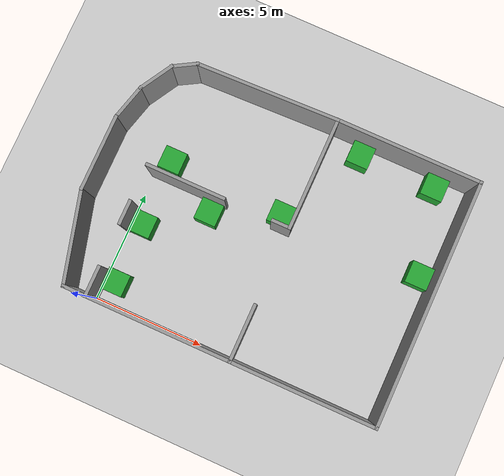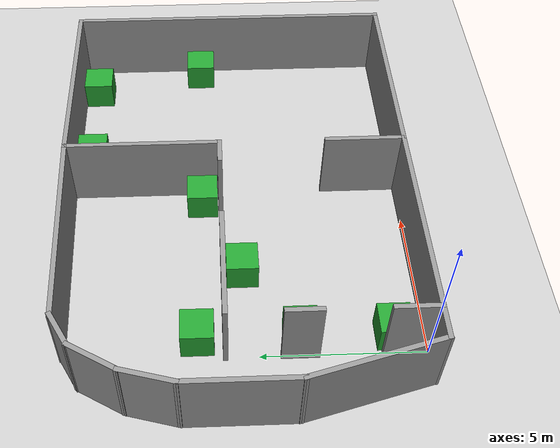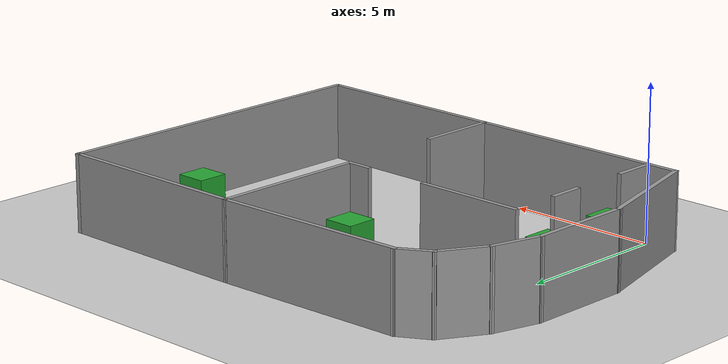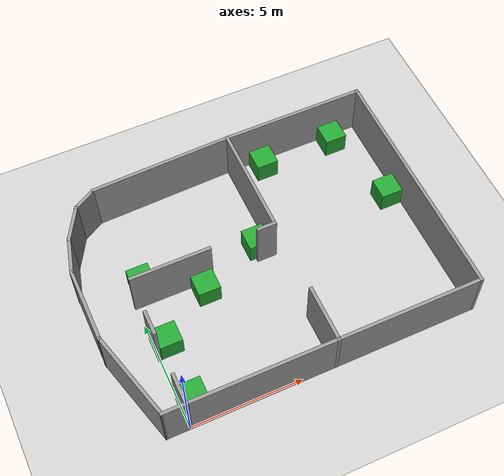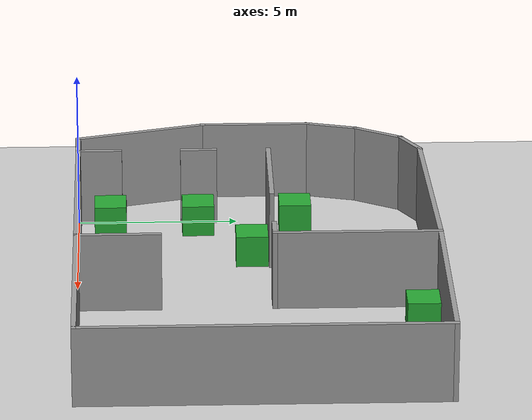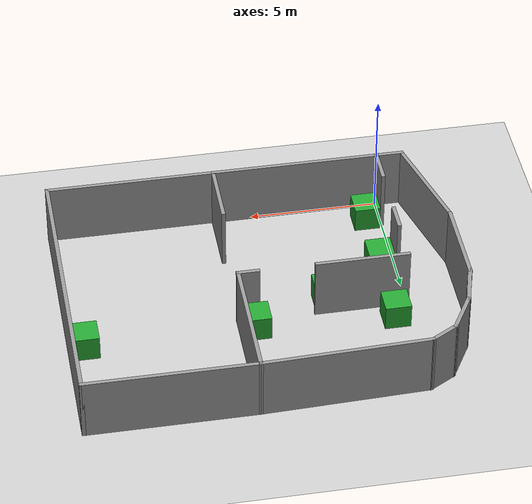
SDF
<sdf version="1.6">
 <world name="default">
  <light name="sun" type="directional">
   <pose>0 0 10 0 -0 0</pose>
   <diffuse>0.8 0.8 0.8 1</diffuse>
   <specular>0.2 0.2 0.2 1</specular>
   <attenuation>
    <range>1000</range>
    <constant>0.9</constant>
    <linear>0.01</linear>
    <quadratic>0.001</quadratic>
   </attenuation>
   <direction>-0.5 0.1 -0.9</direction>
  </light>
  <model name="ground_plane">
   <static>1</static>
   <link name="link">
    <collision name="collision">
     <geometry><plane><normal>0 0 1</normal><size>100 100</size></plane></geometry>
     <surface>
      <contact><collide_bitmask>65535</collide_bitmask></contact>
      <friction><ode><mu>100</mu><mu2>50</mu2></ode></friction>
     </surface>
    </collision>
    <visual name="visual">
     <cast_shadows>0</cast_shadows>
     <geometry><plane><normal>0 0 1</normal><size>100 100</size></plane></geometry>
     <material>
      <script><uri>file://media/materials/scripts/gazebo.material</uri><name>Gazebo/Grey</name></script>
     </material>
    </visual>
   </link>
  </model>
  <gravity>0 0 -9.8</gravity>
  <magnetic_field>6e-06 2.3e-05 -4.2e-05</magnetic_field>
  <atmosphere type="adiabatic"/>
  <physics name="default_physics" default="0" type="ode">
   <max_step_size>0.001</max_step_size>
   <real_time_factor>1</real_time_factor>
   <real_time_update_rate>1000</real_time_update_rate>
  </physics>
  <scene><ambient>0.4 0.4 0.4 1</ambient><background>0.7 0.7 0.7 1</background><shadows>1</shadows></scene>
  <audio><device>default</device></audio>
  <spherical_coordinates>
   <surface_model>EARTH_WGS84</surface_model>
   <latitude_deg>0</latitude_deg>
   <longitude_deg>0</longitude_deg>
   <elevation>0</elevation>
   <heading_deg>0</heading_deg>
  </spherical_coordinates>
  <model name="digitaleFabrik">
   <pose>5.46099 5.49277 0 0 -0 0</pose>
   <link name="Wall_0">
    <collision name="Wall_0_Collision">
     <geometry><box><size>6.65 0.15 2.5</size></box></geometry>
     <pose>0 0 1.25 0 -0 0</pose>
    </collision>
    <visual name="Wall_0_Visual">
     <pose>0 0 1.25 0 -0 0</pose>
     <geometry><box><size>6.65 0.15 2.5</size></box></geometry>
     <material>
      <script><uri>file://media/materials/scripts/gazebo.material</uri><name>Gazebo/Grey</name></script>
      <ambient>1 1 1 1</ambient>
     </material>
     <meta><layer>0</layer></meta>
    </visual>
    <pose>-2.21099 -5.49277 0 0 -0 0</pose>
   </link>
   <link name="Wall_1">
    <collision name="Wall_1_Collision">
     <geometry><box><size>6.65 0.15 2.5</size></box></geometry>
     <pose>0 0 1.25 0 -0 0</pose>
    </collision>
    <visual name="Wall_1_Visual">
     <pose>0 0 1.25 0 -0 0</pose>
     <geometry><box><size>6.65 0.15 2.5</size></box></geometry>
     <material>
      <script><uri>file://media/materials/scripts/gazebo.material</uri><name>Gazebo/Grey</name></script>
      <ambient>1 1 1 1</ambient>
     </material>
     <meta><layer>0</layer></meta>
    </visual>
    <pose>4.28901 -5.49277 0 0 -0 0</pose>
   </link>
   <link name="Wall_12">
    <collision name="Wall_12_Collision">
     <geometry><box><size>1.45 0.15 2.5</size></box></geometry>
     <pose>0 0 1.25 0 -0 0</pose>
    </collision>
    <visual name="Wall_12_Visual">
     <pose>0 0 1.25 0 -0 0</pose>
     <geometry><box><size>1.45 0.15 2.5</size></box></geometry>
     <material>
      <script><uri>file://media/materials/scripts/gazebo.material</uri><name>Gazebo/Grey</name></script>
      <ambient>1 1 1 1</ambient>
     </material>
     <meta><layer>0</layer></meta>
    </visual>
    <pose>-5.46099 -4.84277 0 0 -0 1.5708</pose>
   </link>
   <link name="Wall_14">
    <collision name="Wall_14_Collision">
     <geometry><box><size>0.9 0.15 2.5</size></box></geometry>
     <pose>0 0 1.25 0 -0 0</pose>
    </collision>
    <visual name="Wall_14_Visual">
     <pose>0 0 1.25 0 -0 0</pose>
     <geometry><box><size>0.9 0.15 2.5</size></box></geometry>
     <material>
      <script><uri>file://media/materials/scripts/gazebo.material</uri><name>Gazebo/Grey</name></script>
      <ambient>1 1 1 1</ambient>
     </material>
     <meta><layer>0</layer></meta>
    </visual>
    <pose>0.664007 0.507225 0 0 -0 3.14159</pose>
   </link>
   <link name="Wall_16">
    <collision name="Wall_16_Collision">
     <geometry><box><size>1.15 0.15 2.5</size></box></geometry>
     <pose>0 0 1.25 0 -0 0</pose>
    </collision>
    <visual name="Wall_16_Visual">
     <pose>0 0 1.25 0 -0 0</pose>
     <geometry><box><size>1.15 0.15 2.5</size></box></geometry>
     <material>
      <script><uri>file://media/materials/scripts/gazebo.material</uri><name>Gazebo/Grey</name></script>
      <ambient>1 1 1 1</ambient>
     </material>
     <meta><layer>0</layer></meta>
    </visual>
    <pose>-5.46099 -1.69277 0 0 -0 1.5708</pose>
   </link>
   <link name="Wall_18">
    <collision name="Wall_18_Collision">
     <geometry><box><size>3.65 0.15 2.5</size></box></geometry>
     <pose>0 0 1.25 0 -0 0</pose>
    </collision>
    <visual name="Wall_18_Visual">
     <pose>0 0 1.25 0 -0 0</pose>
     <geometry><box><size>3.65 0.15 2.5</size></box></geometry>
     <material>
      <script><uri>file://media/materials/scripts/gazebo.material</uri><name>Gazebo/Grey</name></script>
      <ambient>1 1 1 1</ambient>
     </material>
     <meta><layer>0</layer></meta>
    </visual>
    <pose>-3.71099 0.507225 0 0 -0 0</pose>
   </link>
   <link name="Wall_3">
    <collision name="Wall_3_Collision">
     <geometry><box><size>1.15 0.15 2.5</size></box></geometry>
     <pose>0 0 1.25 0 -0 0</pose>
    </collision>
    <visual name="Wall_3_Visual">
     <pose>0 0 1.25 0 -0 0</pose>
     <geometry><box><size>1.15 0.15 2.5</size></box></geometry>
     <material>
      <script><uri>file://media/materials/scripts/gazebo.material</uri><name>Gazebo/Grey</name></script>
      <ambient>1 1 1 1</ambient>
     </material>
     <meta><layer>0</layer></meta>
    </visual>
    <pose>-5.96099 -5.49277 0 0 -0 3.14159</pose>
   </link>
   <link name="Wall_44">
    <collision name="Wall_44_Collision">
     <geometry><box><size>4.25 0.15 2.5</size></box></geometry>
     <pose>0 0 1.25 0 -0 0</pose>
    </collision>
    <visual name="Wall_44_Visual">
     <pose>0 0 1.25 0 -0 0</pose>
     <geometry><box><size>4.25 0.15 2.5</size></box></geometry>
     <material>
      <script><uri>file://media/materials/scripts/gazebo.material</uri><name>Gazebo/Grey</name></script>
      <ambient>1 1 1 1</ambient>
     </material>
     <meta><layer>0</layer></meta>
    </visual>
    <pose>-6.99157 -3.51263 0 0 -0 1.8326</pose>
   </link>
   <link name="Wall_45">
    <collision name="Wall_45_Collision">
     <geometry><box><size>3.5 0.15 2.5</size></box></geometry>
     <pose>0 0 1.25 0 -0 0</pose>
    </collision>
    <visual name="Wall_45_Visual">
     <pose>0 0 1.25 0 -0 0</pose>
     <geometry><box><size>3.5 0.15 2.5</size></box></geometry>
     <material>
      <script><uri>file://media/materials/scripts/gazebo.material</uri><name>Gazebo/Grey</name></script>
      <ambient>1 1 1 1</ambient>
     </material>
     <meta><layer>0</layer></meta>
    </visual>
    <pose>-7.52215 0.142521 0 0 -0 1.5708</pose>
   </link>
   <link name="Wall_46">
    <collision name="Wall_46_Collision">
     <geometry><box><size>1.75 0.15 2.5</size></box></geometry>
     <pose>0 0 1.25 0 -0 0</pose>
    </collision>
    <visual name="Wall_46_Visual">
     <pose>0 0 1.25 0 -0 0</pose>
     <geometry><box><size>1.75 0.15 2.5</size></box></geometry>
     <material>
      <script><uri>file://media/materials/scripts/gazebo.material</uri><name>Gazebo/Grey</name></script>
      <ambient>1 1 1 1</ambient>
     </material>
     <meta><layer>0</layer></meta>
    </visual>
    <pose>-7.3151 2.59026 0 0 -0 1.309</pose>
   </link>
   <link name="Wall_47">
    <collision name="Wall_47_Collision">
     <geometry><box><size>1.75 0.15 2.5</size></box></geometry>
     <pose>0 0 1.25 0 -0 0</pose>
    </collision>
    <visual name="Wall_47_Visual">
     <pose>0 0 1.25 0 -0 0</pose>
     <geometry><box><size>1.75 0.15 2.5</size></box></geometry>
     <material>
      <script><uri>file://media/materials/scripts/gazebo.material</uri><name>Gazebo/Grey</name></script>
      <ambient>1 1 1 1</ambient>
     </material>
     <meta><layer>0</layer></meta>
    </visual>
    <pose>-6.70804 4.05582 0 0 -0 1.0472</pose>
   </link>
   <link name="Wall_48">
    <collision name="Wall_48_Collision">
     <geometry><box><size>1.25 0.15 2.5</size></box></geometry>
     <pose>0 0 1.25 0 -0 0</pose>
    </collision>
    <visual name="Wall_48_Visual">
     <pose>0 0 1.25 0 -0 0</pose>
     <geometry><box><size>1.25 0.15 2.5</size></box></geometry>
     <material>
      <script><uri>file://media/materials/scripts/gazebo.material</uri><name>Gazebo/Grey</name></script>
      <ambient>1 1 1 1</ambient>
     </material>
     <meta><layer>0</layer></meta>
    </visual>
    <pose>-5.83173 5.02364 0 0 -0 0.523599</pose>
   </link>
   <link name="Wall_49">
    <collision name="Wall_49_Collision">
     <geometry><box><size>6.54782 0.15 2.5</size></box></geometry>
     <pose>0 0 1.25 0 -0 0</pose>
    </collision>
    <visual name="Wall_49_Visual">
     <pose>0 0 1.25 0 -0 0</pose>
     <geometry><box><size>6.54782 0.15 2.5</size></box></geometry>
     <material>
      <script><uri>file://media/materials/scripts/gazebo.material</uri><name>Gazebo/Grey</name></script>
      <ambient>1 1 1 1</ambient>
     </material>
     <meta><layer>0</layer></meta>
    </visual>
    <pose>-2.1582 5.40293 0 0 -0 0.032608</pose>
   </link>
   <link name="Wall_5">
    <collision name="Wall_5_Collision">
     <geometry><box><size>11.15 0.15 2.5</size></box></geometry>
     <pose>0 0 1.25 0 -0 0</pose>
    </collision>
    <visual name="Wall_5_Visual">
     <pose>0 0 1.25 0 -0 0</pose>
     <geometry><box><size>11.15 0.15 2.5</size></box></geometry>
     <material>
      <script><uri>file://media/materials/scripts/gazebo.material</uri><name>Gazebo/Grey</name></script>
      <ambient>1 1 1 1</ambient>
     </material>
     <meta><layer>0</layer></meta>
    </visual>
    <pose>7.53901 0.007225 0 0 -0 1.5708</pose>
   </link>
   <link name="Wall_6">
    <collision name="Wall_6_Collision">
     <geometry><box><size>6.65 0.15 2.5</size></box></geometry>
     <pose>0 0 1.25 0 -0 0</pose>
    </collision>
    <visual name="Wall_6_Visual">
     <pose>0 0 1.25 0 -0 0</pose>
     <geometry><box><size>6.65 0.15 2.5</size></box></geometry>
     <material>
      <script><uri>file://media/materials/scripts/gazebo.material</uri><name>Gazebo/Grey</name></script>
      <ambient>1 1 1 1</ambient>
     </material>
     <meta><layer>0</layer></meta>
    </visual>
    <pose>4.28901 5.50723 0 0 -0 3.14159</pose>
   </link>
   <link name="Wall_7">
    <collision name="Wall_7_Collision">
     <geometry><box><size>5.15 0.15 2.5</size></box></geometry>
     <pose>0 0 1.25 0 -0 0</pose>
    </collision>
    <visual name="Wall_7_Visual">
     <pose>0 0 1.25 0 -0 0</pose>
     <geometry><box><size>5.15 0.15 2.5</size></box></geometry>
     <material>
      <script><uri>file://media/materials/scripts/gazebo.material</uri><name>Gazebo/Grey</name></script>
      <ambient>1 1 1 1</ambient>
     </material>
     <meta><layer>0</layer></meta>
    </visual>
    <pose>1.03901 3.00723 0 0 -0 -1.5708</pose>
   </link>
   <link name="Wall_9">
    <collision name="Wall_9_Collision">
     <geometry><box><size>2.65 0.15 2.5</size></box></geometry>
     <pose>0 0 1.25 0 -0 0</pose>
    </collision>
    <visual name="Wall_9_Visual">
     <pose>0 0 1.25 0 -0 0</pose>
     <geometry><box><size>2.65 0.15 2.5</size></box></geometry>
     <material>
      <script><uri>file://media/materials/scripts/gazebo.material</uri><name>Gazebo/Grey</name></script>
      <ambient>1 1 1 1</ambient>
     </material>
     <meta><layer>0</layer></meta>
    </visual>
    <pose>1.03901 -4.24277 0 0 -0 1.5708</pose>
   </link>
   <static>1</static>
  </model>
  <model name="station1">
   <pose>0.6 1 0.499995 1e-05 -0 0</pose>
   <link name="link">
    <inertial>
     <mass>1</mass>
     <inertia>
      <ixx>0.166667</ixx>
      <ixy>0</ixy>
      <ixz>0</ixz>
      <iyy>0.166667</iyy>
      <iyz>0</iyz>
      <izz>0.166667</izz>
     </inertia>
    </inertial>
    <collision name="collision"><geometry><box><size>1 1 1</size></box></geometry></collision>
    <visual name="visual">
     <geometry><box><size>1 1 1</size></box></geometry>
     <material>
      <script><name>Gazebo/Green</name><uri>file://media/materials/scripts/gazebo.material</uri></script>
     </material>
    </visual>
   </link>
  </model>
  <model name="station2">
   <pose>0.6 3.76141 0.5 0 -0 0</pose>
   <link name="link">
    <inertial>
     <mass>1</mass>
     <inertia>
      <ixx>0.166667</ixx>
      <ixy>0</ixy>
      <ixz>0</ixz>
      <iyy>0.166667</iyy>
      <iyz>0</iyz>
      <izz>0.166667</izz>
     </inertia>
    </inertial>
    <collision name="collision"><geometry><box><size>1 1 1</size></box></geometry></collision>
    <visual name="visual">
     <geometry><box><size>1 1 1</size></box></geometry>
     <material>
      <script><name>Gazebo/Green</name><uri>file://media/materials/scripts/gazebo.material</uri></script>
     </material>
    </visual>
   </link>
  </model>
  <model name="station3">
   <pose>0.6 6.82263 0.5 0 -0 0</pose>
   <link name="link">
    <inertial>
     <mass>1</mass>
     <inertia>
      <ixx>0.166667</ixx>
      <ixy>0</ixy>
      <ixz>0</ixz>
      <iyy>0.166667</iyy>
      <iyz>0</iyz>
      <izz>0.166667</izz>
     </inertia>
    </inertial>
    <collision name="collision"><geometry><box><size>1 1 1</size></box></geometry></collision>
    <visual name="visual">
     <geometry><box><size>1 1 1</size></box></geometry>
     <material>
      <script><name>Gazebo/Green</name><uri>file://media/materials/scripts/gazebo.material</uri></script>
     </material>
    </visual>
   </link>
  </model>
  <model name="station4">
   <pose>3 5.4 0.5 0 -0 0</pose>
   <link name="link">
    <inertial>
     <mass>1</mass>
     <inertia>
      <ixx>0.166667</ixx>
      <ixy>0</ixy>
      <ixz>0</ixz>
      <iyy>0.166667</iyy>
      <iyz>0</iyz>
      <izz>0.166667</izz>
     </inertia>
    </inertial>
    <collision name="collision"><geometry><box><size>1 1 1</size></box></geometry></collision>
    <visual name="visual">
     <geometry><box><size>1 1 1</size></box></geometry>
     <material>
      <script><name>Gazebo/Green</name><uri>file://media/materials/scripts/gazebo.material</uri></script>
     </material>
    </visual>
   </link>
  </model>
  <model name="station5">
   <pose>5.9 6.6 0.5 0 -0 0</pose>
   <link name="link">
    <inertial>
     <mass>1</mass>
     <inertia>
      <ixx>0.166667</ixx>
      <ixy>0</ixy>
      <ixz>0</ixz>
      <iyy>0.166667</iyy>
      <iyz>0</iyz>
      <izz>0.166667</izz>
     </inertia>
    </inertial>
    <collision name="collision"><geometry><box><size>1 1 1</size></box></geometry></collision>
    <visual name="visual">
     <geometry><box><size>1 1 1</size></box></geometry>
     <material>
      <script><name>Gazebo/Green</name><uri>file://media/materials/scripts/gazebo.material</uri></script>
     </material>
    </visual>
   </link>
  </model>
  <model name="station6">
   <pose>8 10.4 0.5 0 -0 0</pose>
   <link name="link">
    <inertial>
     <mass>1</mass>
     <inertia>
      <ixx>0.166667</ixx>
      <ixy>0</ixy>
      <ixz>0</ixz>
      <iyy>0.166667</iyy>
      <iyz>0</iyz>
      <izz>0.166667</izz>
     </inertia>
    </inertial>
    <collision name="collision"><geometry><box><size>1 1 1</size></box></geometry></collision>
    <visual name="visual">
     <geometry><box><size>1 1 1</size></box></geometry>
     <material>
      <script><name>Gazebo/Green</name><uri>file://media/materials/scripts/gazebo.material</uri></script>
     </material>
    </visual>
   </link>
  </model>
  <model name="station7">
   <pose>11.5 10.4 0.5 0 -0 0</pose>
   <link name="link">
    <inertial>
     <mass>1</mass>
     <inertia>
      <ixx>0.166667</ixx>
      <ixy>0</ixy>
      <ixz>0</ixz>
      <iyy>0.166667</iyy>
      <iyz>0</iyz>
      <izz>0.166667</izz>
     </inertia>
    </inertial>
    <collision name="collision"><geometry><box><size>1 1 1</size></box></geometry></collision>
    <visual name="visual">
     <geometry><box><size>1 1 1</size></box></geometry>
     <material>
      <script><name>Gazebo/Green</name><uri>file://media/materials/scripts/gazebo.material</uri></script>
     </material>
    </visual>
   </link>
  </model>
  <model name="station8">
   <pose>12.4 6.6 0.5 0 -0 0</pose>
   <link name="link">
    <inertial>
     <mass>1</mass>
     <inertia>
      <ixx>0.166667</ixx>
      <ixy>0</ixy>
      <ixz>0</ixz>
      <iyy>0.166667</iyy>
      <iyz>0</iyz>
      <izz>0.166667</izz>
     </inertia>
    </inertial>
    <collision name="collision"><geometry><box><size>1 1 1</size></box></geometry></collision>
    <visual name="visual">
     <geometry><box><size>1 1 1</size></box></geometry>
     <material>
      <script><name>Gazebo/Green</name><uri>file://media/materials/scripts/gazebo.material</uri></script>
     </material>
    </visual>
   </link>
  </model>
 </world>
</sdf>
